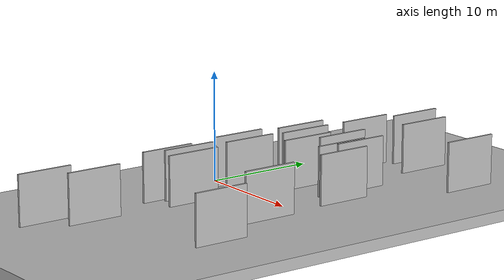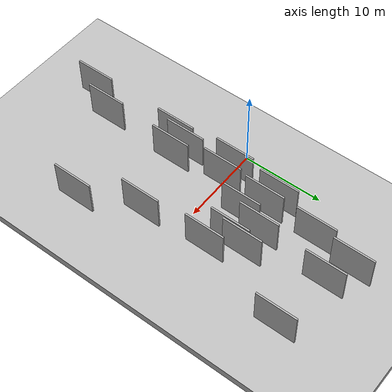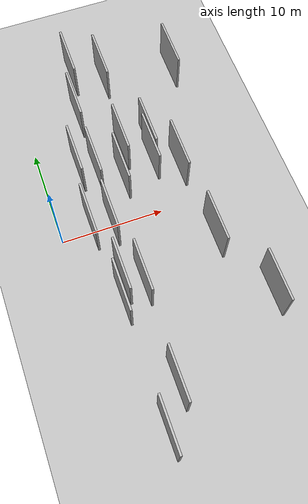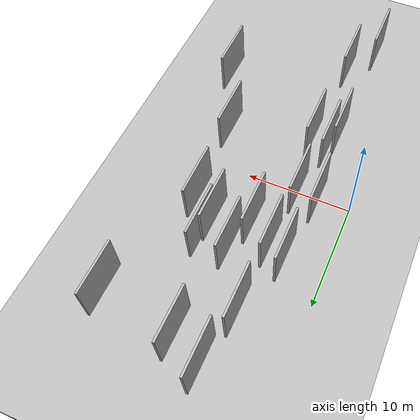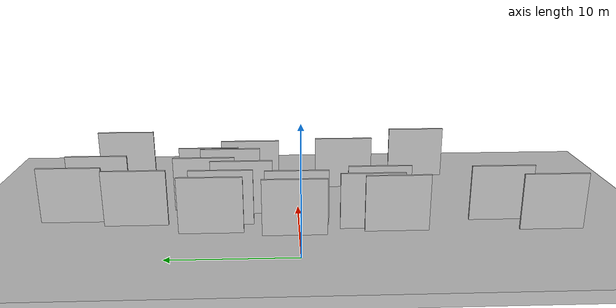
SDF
<?xml version="1.0" encoding="utf-8"?>

<sdf version="1.6">

   <world name="default">

      <gui fullscreen="0">

         <camera name="user_camera">

            <pose>-15 0 4.57585 0 0 0</pose>

            <view_controller>orbit</view_controller>

         </camera>

      </gui>

      <scene>

         <sky>

           <clouds>

             <speed>12</speed>

           </clouds>

         </sky>

         <ambient>0.4 0.4 0.4 1</ambient>

         <background>0.7 0.7 0.7 1</background>

         <shadows>1</shadows>

      </scene>

      <gravity>0 0 -9.8066</gravity>

      <magnetic_field>6e-06 2.3e-05 -4.2e-05</magnetic_field>

      <physics default="0" name="default_physics" type="ode">

         <ode>

            <solver>

               <type>quick</type>

               <iters>10</iters>

               <sor>1.0</sor>

               <use_dynamic_moi_rescaling>0</use_dynamic_moi_rescaling>

            </solver>

            <constraints>

               <cfm>0</cfm>

               <erp>0.2</erp>

               <contact_max_correcting_vel>100</contact_max_correcting_vel>

               <contact_surface_layer>0.001</contact_surface_layer>

            </constraints>

         </ode>

         <max_step_size>0.004</max_step_size>

         <real_time_factor>1</real_time_factor>

         <real_time_update_rate>250</real_time_update_rate>

      </physics>

      <light name="sun" type="directional">

         <cast_shadows>1</cast_shadows>

         <pose>0 0 10 0 0 0</pose>

         <diffuse>0.8 0.8 0.8 1</diffuse>

         <specular>0.2 0.2 0.2 1</specular>

         <attenuation>

            <range>1000</range>

            <constant>0.9</constant>

            <linear>0.01</linear>

            <quadratic>0.001</quadratic>

         </attenuation>

         <direction>-0.5 0.1 -0.9</direction>

      </light>

      <include>

         <name>ground_plane_1</name>

         <uri>model://HANNAS_ground_plane</uri>

         <pose>0 0 0  0 0 0</pose>

      </include>

      <include>

         <name>ground_plane_2</name>

         <uri>model://HANNAS_ground_plane</uri>

         <pose>100 0 0  0 0 0</pose>

      </include>

      <model name="HANNAS_wall_1">

         <static>1</static>

         <pose frame="">5.4401 12.8027 0.0 0.000000 0.000000 1.570796</pose>

         <link name="link">

            <pose frame="">0 0 2.50 0 0 0</pose>

            <collision name="collision">

               <geometry>

                  <box>

                     <size>5.00 0.2 5.00</size>

                  </box>

               </geometry>

               <max_contacts>10</max_contacts>

               <surface>

                  <contact>

                     <ode/>

                  </contact>

                  <bounce/>

                  <friction>

                     <torsional>

                        <ode/>

                     </torsional>

                     <ode/>

                  </friction>

               </surface>

            </collision>

            <visual name="visual">

               <cast_shadows>0</cast_shadows>

               <geometry>

                  <box>

                     <size>5.00 0.2 5.00</size>

                  </box>

               </geometry>

               <material>

                  <script>

                     <uri>model://HANNAS_wall/materials/scripts</uri>

                     <uri>model://HANNAS_wall/materials/textures</uri>

                     <name>vrc/HANNAS_wall</name>

                  </script>

               </material>

            </visual>

            <self_collide>0</self_collide>

            <enable_wind>0</enable_wind>

            <kinematic>0</kinematic>

         </link>

      </model>

      <model name="HANNAS_wall_2">

         <static>1</static>

         <pose frame="">5.5367 -16.1095 0.0 0.000000 0.000000 1.570796</pose>

         <link name="link">

            <pose frame="">0 0 2.50 0 0 0</pose>

            <collision name="collision">

               <geometry>

                  <box>

                     <size>5.00 0.2 5.00</size>

                  </box>

               </geometry>

               <max_contacts>10</max_contacts>

               <surface>

                  <contact>

                     <ode/>

                  </contact>

                  <bounce/>

                  <friction>

                     <torsional>

                        <ode/>

                     </torsional>

                     <ode/>

                  </friction>

               </surface>

            </collision>

            <visual name="visual">

               <cast_shadows>0</cast_shadows>

               <geometry>

                  <box>

                     <size>5.00 0.2 5.00</size>

                  </box>

               </geometry>

               <material>

                  <script>

                     <uri>model://HANNAS_wall/materials/scripts</uri>

                     <uri>model://HANNAS_wall/materials/textures</uri>

                     <name>vrc/HANNAS_wall</name>

                  </script>

               </material>

            </visual>

            <self_collide>0</self_collide>

            <enable_wind>0</enable_wind>

            <kinematic>0</kinematic>

         </link>

      </model>

      <model name="HANNAS_wall_3">

         <static>1</static>

         <pose frame="">3.4384 -19.5930 0.0 0.000000 0.000000 1.570796</pose>

         <link name="link">

            <pose frame="">0 0 2.50 0 0 0</pose>

            <collision name="collision">

               <geometry>

                  <box>

                     <size>5.00 0.2 5.00</size>

                  </box>

               </geometry>

               <max_contacts>10</max_contacts>

               <surface>

                  <contact>

                     <ode/>

                  </contact>

                  <bounce/>

                  <friction>

                     <torsional>

                        <ode/>

                     </torsional>

                     <ode/>

                  </friction>

               </surface>

            </collision>

            <visual name="visual">

               <cast_shadows>0</cast_shadows>

               <geometry>

                  <box>

                     <size>5.00 0.2 5.00</size>

                  </box>

               </geometry>

               <material>

                  <script>

                     <uri>model://HANNAS_wall/materials/scripts</uri>

                     <uri>model://HANNAS_wall/materials/textures</uri>

                     <name>vrc/HANNAS_wall</name>

                  </script>

               </material>

            </visual>

            <self_collide>0</self_collide>

            <enable_wind>0</enable_wind>

            <kinematic>0</kinematic>

         </link>

      </model>

      <model name="HANNAS_wall_4">

         <static>1</static>

         <pose frame="">16.5443 15.5215 0.0 0.000000 0.000000 1.570796</pose>

         <link name="link">

            <pose frame="">0 0 2.50 0 0 0</pose>

            <collision name="collision">

               <geometry>

                  <box>

                     <size>5.00 0.2 5.00</size>

                  </box>

               </geometry>

               <max_contacts>10</max_contacts>

               <surface>

                  <contact>

                     <ode/>

                  </contact>

                  <bounce/>

                  <friction>

                     <torsional>

                        <ode/>

                     </torsional>

                     <ode/>

                  </friction>

               </surface>

            </collision>

            <visual name="visual">

               <cast_shadows>0</cast_shadows>

               <geometry>

                  <box>

                     <size>5.00 0.2 5.00</size>

                  </box>

               </geometry>

               <material>

                  <script>

                     <uri>model://HANNAS_wall/materials/scripts</uri>

                     <uri>model://HANNAS_wall/materials/textures</uri>

                     <name>vrc/HANNAS_wall</name>

                  </script>

               </material>

            </visual>

            <self_collide>0</self_collide>

            <enable_wind>0</enable_wind>

            <kinematic>0</kinematic>

         </link>

      </model>

      <model name="HANNAS_wall_5">

         <static>1</static>

         <pose frame="">3.6956 6.8083 0.0 0.000000 0.000000 1.570796</pose>

         <link name="link">

            <pose frame="">0 0 2.50 0 0 0</pose>

            <collision name="collision">

               <geometry>

                  <box>

                     <size>5.00 0.2 5.00</size>

                  </box>

               </geometry>

               <max_contacts>10</max_contacts>

               <surface>

                  <contact>

                     <ode/>

                  </contact>

                  <bounce/>

                  <friction>

                     <torsional>

                        <ode/>

                     </torsional>

                     <ode/>

                  </friction>

               </surface>

            </collision>

            <visual name="visual">

               <cast_shadows>0</cast_shadows>

               <geometry>

                  <box>

                     <size>5.00 0.2 5.00</size>

                  </box>

               </geometry>

               <material>

                  <script>

                     <uri>model://HANNAS_wall/materials/scripts</uri>

                     <uri>model://HANNAS_wall/materials/textures</uri>

                     <name>vrc/HANNAS_wall</name>

                  </script>

               </material>

            </visual>

            <self_collide>0</self_collide>

            <enable_wind>0</enable_wind>

            <kinematic>0</kinematic>

         </link>

      </model>

      <model name="HANNAS_wall_6">

         <static>1</static>

         <pose frame="">16.6727 -11.1894 0.0 0.000000 0.000000 1.570796</pose>

         <link name="link">

            <pose frame="">0 0 2.50 0 0 0</pose>

            <collision name="collision">

               <geometry>

                  <box>

                     <size>5.00 0.2 5.00</size>

                  </box>

               </geometry>

               <max_contacts>10</max_contacts>

               <surface>

                  <contact>

                     <ode/>

                  </contact>

                  <bounce/>

                  <friction>

                     <torsional>

                        <ode/>

                     </torsional>

                     <ode/>

                  </friction>

               </surface>

            </collision>

            <visual name="visual">

               <cast_shadows>0</cast_shadows>

               <geometry>

                  <box>

                     <size>5.00 0.2 5.00</size>

                  </box>

               </geometry>

               <material>

                  <script>

                     <uri>model://HANNAS_wall/materials/scripts</uri>

                     <uri>model://HANNAS_wall/materials/textures</uri>

                     <name>vrc/HANNAS_wall</name>

                  </script>

               </material>

            </visual>

            <self_collide>0</self_collide>

            <enable_wind>0</enable_wind>

            <kinematic>0</kinematic>

         </link>

      </model>

      <model name="HANNAS_wall_7">

         <static>1</static>

         <pose frame="">4.1768 -5.6454 0.0 0.000000 0.000000 1.570796</pose>

         <link name="link">

            <pose frame="">0 0 2.50 0 0 0</pose>

            <collision name="collision">

               <geometry>

                  <box>

                     <size>5.00 0.2 5.00</size>

                  </box>

               </geometry>

               <max_contacts>10</max_contacts>

               <surface>

                  <contact>

                     <ode/>

                  </contact>

                  <bounce/>

                  <friction>

                     <torsional>

                        <ode/>

                     </torsional>

                     <ode/>

                  </friction>

               </surface>

            </collision>

            <visual name="visual">

               <cast_shadows>0</cast_shadows>

               <geometry>

                  <box>

                     <size>5.00 0.2 5.00</size>

                  </box>

               </geometry>

               <material>

                  <script>

                     <uri>model://HANNAS_wall/materials/scripts</uri>

                     <uri>model://HANNAS_wall/materials/textures</uri>

                     <name>vrc/HANNAS_wall</name>

                  </script>

               </material>

            </visual>

            <self_collide>0</self_collide>

            <enable_wind>0</enable_wind>

            <kinematic>0</kinematic>

         </link>

      </model>

      <model name="HANNAS_wall_8">

         <static>1</static>

         <pose frame="">13.2646 4.0858 0.0 0.000000 0.000000 1.570796</pose>

         <link name="link">

            <pose frame="">0 0 2.50 0 0 0</pose>

            <collision name="collision">

               <geometry>

                  <box>

                     <size>5.00 0.2 5.00</size>

                  </box>

               </geometry>

               <max_contacts>10</max_contacts>

               <surface>

                  <contact>

                     <ode/>

                  </contact>

                  <bounce/>

                  <friction>

                     <torsional>

                        <ode/>

                     </torsional>

                     <ode/>

                  </friction>

               </surface>

            </collision>

            <visual name="visual">

               <cast_shadows>0</cast_shadows>

               <geometry>

                  <box>

                     <size>5.00 0.2 5.00</size>

                  </box>

               </geometry>

               <material>

                  <script>

                     <uri>model://HANNAS_wall/materials/scripts</uri>

                     <uri>model://HANNAS_wall/materials/textures</uri>

                     <name>vrc/HANNAS_wall</name>

                  </script>

               </material>

            </visual>

            <self_collide>0</self_collide>

            <enable_wind>0</enable_wind>

            <kinematic>0</kinematic>

         </link>

      </model>

      <model name="HANNAS_wall_9">

         <static>1</static>

         <pose frame="">9.3192 16.5121 0.0 0.000000 0.000000 1.570796</pose>

         <link name="link">

            <pose frame="">0 0 2.50 0 0 0</pose>

            <collision name="collision">

               <geometry>

                  <box>

                     <size>5.00 0.2 5.00</size>

                  </box>

               </geometry>

               <max_contacts>10</max_contacts>

               <surface>

                  <contact>

                     <ode/>

                  </contact>

                  <bounce/>

                  <friction>

                     <torsional>

                        <ode/>

                     </torsional>

                     <ode/>

                  </friction>

               </surface>

            </collision>

            <visual name="visual">

               <cast_shadows>0</cast_shadows>

               <geometry>

                  <box>

                     <size>5.00 0.2 5.00</size>

                  </box>

               </geometry>

               <material>

                  <script>

                     <uri>model://HANNAS_wall/materials/scripts</uri>

                     <uri>model://HANNAS_wall/materials/textures</uri>

                     <name>vrc/HANNAS_wall</name>

                  </script>

               </material>

            </visual>

            <self_collide>0</self_collide>

            <enable_wind>0</enable_wind>

            <kinematic>0</kinematic>

         </link>

      </model>

      <model name="HANNAS_wall_10">

         <static>1</static>

         <pose frame="">3.0445 0.4032 0.0 0.000000 0.000000 1.570796</pose>

         <link name="link">

            <pose frame="">0 0 2.50 0 0 0</pose>

            <collision name="collision">

               <geometry>

                  <box>

                     <size>5.00 0.2 5.00</size>

                  </box>

               </geometry>

               <max_contacts>10</max_contacts>

               <surface>

                  <contact>

                     <ode/>

                  </contact>

                  <bounce/>

                  <friction>

                     <torsional>

                        <ode/>

                     </torsional>

                     <ode/>

                  </friction>

               </surface>

            </collision>

            <visual name="visual">

               <cast_shadows>0</cast_shadows>

               <geometry>

                  <box>

                     <size>5.00 0.2 5.00</size>

                  </box>

               </geometry>

               <material>

                  <script>

                     <uri>model://HANNAS_wall/materials/scripts</uri>

                     <uri>model://HANNAS_wall/materials/textures</uri>

                     <name>vrc/HANNAS_wall</name>

                  </script>

               </material>

            </visual>

            <self_collide>0</self_collide>

            <enable_wind>0</enable_wind>

            <kinematic>0</kinematic>

         </link>

      </model>

      <model name="HANNAS_wall_11">

         <static>1</static>

         <pose frame="">5.0225 0.1860 0.0 0.000000 0.000000 1.570796</pose>

         <link name="link">

            <pose frame="">0 0 2.50 0 0 0</pose>

            <collision name="collision">

               <geometry>

                  <box>

                     <size>5.00 0.2 5.00</size>

                  </box>

               </geometry>

               <max_contacts>10</max_contacts>

               <surface>

                  <contact>

                     <ode/>

                  </contact>

                  <bounce/>

                  <friction>

                     <torsional>

                        <ode/>

                     </torsional>

                     <ode/>

                  </friction>

               </surface>

            </collision>

            <visual name="visual">

               <cast_shadows>0</cast_shadows>

               <geometry>

                  <box>

                     <size>5.00 0.2 5.00</size>

                  </box>

               </geometry>

               <material>

                  <script>

                     <uri>model://HANNAS_wall/materials/scripts</uri>

                     <uri>model://HANNAS_wall/materials/textures</uri>

                     <name>vrc/HANNAS_wall</name>

                  </script>

               </material>

            </visual>

            <self_collide>0</self_collide>

            <enable_wind>0</enable_wind>

            <kinematic>0</kinematic>

         </link>

      </model>

      <model name="HANNAS_wall_12">

         <static>1</static>

         <pose frame="">10.9550 5.6868 0.0 0.000000 0.000000 1.570796</pose>

         <link name="link">

            <pose frame="">0 0 2.50 0 0 0</pose>

            <collision name="collision">

               <geometry>

                  <box>

                     <size>5.00 0.2 5.00</size>

                  </box>

               </geometry>

               <max_contacts>10</max_contacts>

               <surface>

                  <contact>

                     <ode/>

                  </contact>

                  <bounce/>

                  <friction>

                     <torsional>

                        <ode/>

                     </torsional>

                     <ode/>

                  </friction>

               </surface>

            </collision>

            <visual name="visual">

               <cast_shadows>0</cast_shadows>

               <geometry>

                  <box>

                     <size>5.00 0.2 5.00</size>

                  </box>

               </geometry>

               <material>

                  <script>

                     <uri>model://HANNAS_wall/materials/scripts</uri>

                     <uri>model://HANNAS_wall/materials/textures</uri>

                     <name>vrc/HANNAS_wall</name>

                  </script>

               </material>

            </visual>

            <self_collide>0</self_collide>

            <enable_wind>0</enable_wind>

            <kinematic>0</kinematic>

         </link>

      </model>

      <model name="HANNAS_wall_13">

         <static>1</static>

         <pose frame="">5.8971 -6.3925 0.0 0.000000 0.000000 1.570796</pose>

         <link name="link">

            <pose frame="">0 0 2.50 0 0 0</pose>

            <collision name="collision">

               <geometry>

                  <box>

                     <size>5.00 0.2 5.00</size>

                  </box>

               </geometry>

               <max_contacts>10</max_contacts>

               <surface>

                  <contact>

                     <ode/>

                  </contact>

                  <bounce/>

                  <friction>

                     <torsional>

                        <ode/>

                     </torsional>

                     <ode/>

                  </friction>

               </surface>

            </collision>

            <visual name="visual">

               <cast_shadows>0</cast_shadows>

               <geometry>

                  <box>

                     <size>5.00 0.2 5.00</size>

                  </box>

               </geometry>

               <material>

                  <script>

                     <uri>model://HANNAS_wall/materials/scripts</uri>

                     <uri>model://HANNAS_wall/materials/textures</uri>

                     <name>vrc/HANNAS_wall</name>

                  </script>

               </material>

            </visual>

            <self_collide>0</self_collide>

            <enable_wind>0</enable_wind>

            <kinematic>0</kinematic>

         </link>

      </model>

      <model name="HANNAS_wall_14">

         <static>1</static>

         <pose frame="">7.5846 4.5986 0.0 0.000000 0.000000 1.570796</pose>

         <link name="link">

            <pose frame="">0 0 2.50 0 0 0</pose>

            <collision name="collision">

               <geometry>

                  <box>

                     <size>5.00 0.2 5.00</size>

                  </box>

               </geometry>

               <max_contacts>10</max_contacts>

               <surface>

                  <contact>

                     <ode/>

                  </contact>

                  <bounce/>

                  <friction>

                     <torsional>

                        <ode/>

                     </torsional>

                     <ode/>

                  </friction>

               </surface>

            </collision>

            <visual name="visual">

               <cast_shadows>0</cast_shadows>

               <geometry>

                  <box>

                     <size>5.00 0.2 5.00</size>

                  </box>

               </geometry>

               <material>

                  <script>

                     <uri>model://HANNAS_wall/materials/scripts</uri>

                     <uri>model://HANNAS_wall/materials/textures</uri>

                     <name>vrc/HANNAS_wall</name>

                  </script>

               </material>

            </visual>

            <self_collide>0</self_collide>

            <enable_wind>0</enable_wind>

            <kinematic>0</kinematic>

         </link>

      </model>

      <model name="HANNAS_wall_15">

         <static>1</static>

         <pose frame="">11.2767 7.5170 0.0 0.000000 0.000000 1.570796</pose>

         <link name="link">

            <pose frame="">0 0 2.50 0 0 0</pose>

            <collision name="collision">

               <geometry>

                  <box>

                     <size>5.00 0.2 5.00</size>

                  </box>

               </geometry>

               <max_contacts>10</max_contacts>

               <surface>

                  <contact>

                     <ode/>

                  </contact>

                  <bounce/>

                  <friction>

                     <torsional>

                        <ode/>

                     </torsional>

                     <ode/>

                  </friction>

               </surface>

            </collision>

            <visual name="visual">

               <cast_shadows>0</cast_shadows>

               <geometry>

                  <box>

                     <size>5.00 0.2 5.00</size>

                  </box>

               </geometry>

               <material>

                  <script>

                     <uri>model://HANNAS_wall/materials/scripts</uri>

                     <uri>model://HANNAS_wall/materials/textures</uri>

                     <name>vrc/HANNAS_wall</name>

                  </script>

               </material>

            </visual>

            <self_collide>0</self_collide>

            <enable_wind>0</enable_wind>

            <kinematic>0</kinematic>

         </link>

      </model>

      <model name="HANNAS_wall_16">

         <static>1</static>

         <pose frame="">5.3301 6.0891 0.0 0.000000 0.000000 1.570796</pose>

         <link name="link">

            <pose frame="">0 0 2.50 0 0 0</pose>

            <collision name="collision">

               <geometry>

                  <box>

                     <size>5.00 0.2 5.00</size>

                  </box>

               </geometry>

               <max_contacts>10</max_contacts>

               <surface>

                  <contact>

                     <ode/>

                  </contact>

                  <bounce/>

                  <friction>

                     <torsional>

                        <ode/>

                     </torsional>

                     <ode/>

                  </friction>

               </surface>

            </collision>

            <visual name="visual">

               <cast_shadows>0</cast_shadows>

               <geometry>

                  <box>

                     <size>5.00 0.2 5.00</size>

                  </box>

               </geometry>

               <material>

                  <script>

                     <uri>model://HANNAS_wall/materials/scripts</uri>

                     <uri>model://HANNAS_wall/materials/textures</uri>

                     <name>vrc/HANNAS_wall</name>

                  </script>

               </material>

            </visual>

            <self_collide>0</self_collide>

            <enable_wind>0</enable_wind>

            <kinematic>0</kinematic>

         </link>

      </model>

      <model name="HANNAS_wall_17">

         <static>1</static>

         <pose frame="">13.7609 -4.1693 0.0 0.000000 0.000000 1.570796</pose>

         <link name="link">

            <pose frame="">0 0 2.50 0 0 0</pose>

            <collision name="collision">

               <geometry>

                  <box>

                     <size>5.00 0.2 5.00</size>

                  </box>

               </geometry>

               <max_contacts>10</max_contacts>

               <surface>

                  <contact>

                     <ode/>

                  </contact>

                  <bounce/>

                  <friction>

                     <torsional>

                        <ode/>

                     </torsional>

                     <ode/>

                  </friction>

               </surface>

            </collision>

            <visual name="visual">

               <cast_shadows>0</cast_shadows>

               <geometry>

                  <box>

                     <size>5.00 0.2 5.00</size>

                  </box>

               </geometry>

               <material>

                  <script>

                     <uri>model://HANNAS_wall/materials/scripts</uri>

                     <uri>model://HANNAS_wall/materials/textures</uri>

                     <name>vrc/HANNAS_wall</name>

                  </script>

               </material>

            </visual>

            <self_collide>0</self_collide>

            <enable_wind>0</enable_wind>

            <kinematic>0</kinematic>

         </link>

      </model>

      <model name="HANNAS_wall_18">

         <static>1</static>

         <pose frame="">8.5477 7.6848 0.0 0.000000 0.000000 1.570796</pose>

         <link name="link">

            <pose frame="">0 0 2.50 0 0 0</pose>

            <collision name="collision">

               <geometry>

                  <box>

                     <size>5.00 0.2 5.00</size>

                  </box>

               </geometry>

               <max_contacts>10</max_contacts>

               <surface>

                  <contact>

                     <ode/>

                  </contact>

                  <bounce/>

                  <friction>

                     <torsional>

                        <ode/>

                     </torsional>

                     <ode/>

                  </friction>

               </surface>

            </collision>

            <visual name="visual">

               <cast_shadows>0</cast_shadows>

               <geometry>

                  <box>

                     <size>5.00 0.2 5.00</size>

                  </box>

               </geometry>

               <material>

                  <script>

                     <uri>model://HANNAS_wall/materials/scripts</uri>

                     <uri>model://HANNAS_wall/materials/textures</uri>

                     <name>vrc/HANNAS_wall</name>

                  </script>

               </material>

            </visual>

            <self_collide>0</self_collide>

            <enable_wind>0</enable_wind>

            <kinematic>0</kinematic>

         </link>

      </model>

      <model name="HANNAS_wall_19">

         <static>1</static>

         <pose frame="">6.3274 17.9553 0.0 0.000000 0.000000 1.570796</pose>

         <link name="link">

            <pose frame="">0 0 2.50 0 0 0</pose>

            <collision name="collision">

               <geometry>

                  <box>

                     <size>5.00 0.2 5.00</size>

                  </box>

               </geometry>

               <max_contacts>10</max_contacts>

               <surface>

                  <contact>

                     <ode/>

                  </contact>

                  <bounce/>

                  <friction>

                     <torsional>

                        <ode/>

                     </torsional>

                     <ode/>

                  </friction>

               </surface>

            </collision>

            <visual name="visual">

               <cast_shadows>0</cast_shadows>

               <geometry>

                  <box>

                     <size>5.00 0.2 5.00</size>

                  </box>

               </geometry>

               <material>

                  <script>

                     <uri>model://HANNAS_wall/materials/scripts</uri>

                     <uri>model://HANNAS_wall/materials/textures</uri>

                     <name>vrc/HANNAS_wall</name>

                  </script>

               </material>

            </visual>

            <self_collide>0</self_collide>

            <enable_wind>0</enable_wind>

            <kinematic>0</kinematic>

         </link>

      </model>

      <model name="HANNAS_wall_20">

         <static>1</static>

         <pose frame="">3.5800 -7.5036 0.0 0.000000 0.000000 1.570796</pose>

         <link name="link">

            <pose frame="">0 0 2.50 0 0 0</pose>

            <collision name="collision">

               <geometry>

                  <box>

                     <size>5.00 0.2 5.00</size>

                  </box>

               </geometry>

               <max_contacts>10</max_contacts>

               <surface>

                  <contact>

                     <ode/>

                  </contact>

                  <bounce/>

                  <friction>

                     <torsional>

                        <ode/>

                     </torsional>

                     <ode/>

                  </friction>

               </surface>

            </collision>

            <visual name="visual">

               <cast_shadows>0</cast_shadows>

               <geometry>

                  <box>

                     <size>5.00 0.2 5.00</size>

                  </box>

               </geometry>

               <material>

                  <script>

                     <uri>model://HANNAS_wall/materials/scripts</uri>

                     <uri>model://HANNAS_wall/materials/textures</uri>

                     <name>vrc/HANNAS_wall</name>

                  </script>

               </material>

            </visual>

            <self_collide>0</self_collide>

            <enable_wind>0</enable_wind>

            <kinematic>0</kinematic>

         </link>

      </model>

   </world>

</sdf>

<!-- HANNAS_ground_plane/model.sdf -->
<sdf version="1.4">
<model name="HANNAS_ground_plane">
  <static>true</static>
    <link name="link">
      <collision name="collision">
        <geometry>
          <plane>
            <normal>0 0 1</normal>
            <size>1000 1000</size>
          </plane>
        </geometry>
        <surface>
          <friction>
            <ode>
              <mu>100</mu>
              <mu2>50</mu2>
            </ode>
          </friction>
        </surface>
      </collision>
      <visual name="visual">
        <cast_shadows>false</cast_shadows>
        <geometry>
          <plane>
            <normal>0 0 1</normal>
            <size>1000 1000</size>
          </plane>
        </geometry>
        <material>
          <script>
            <uri>model://HANNAS_ground_plane/materials/scripts/HANNAS_ground_plane.material</uri>
	    <uri>model://HANNAS_ground_plane/materials/textures</uri>
            <name>HANNASGroundPlane/Image</name>
          </script>
        </material>
      </visual>
    </link>
  </model>
</sdf>
